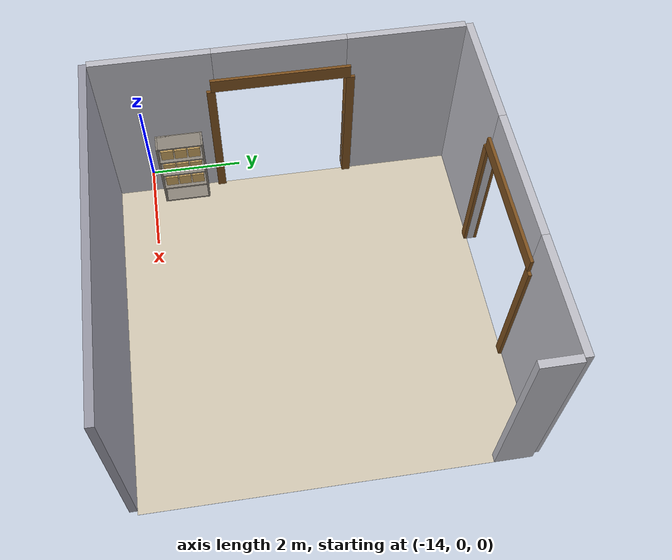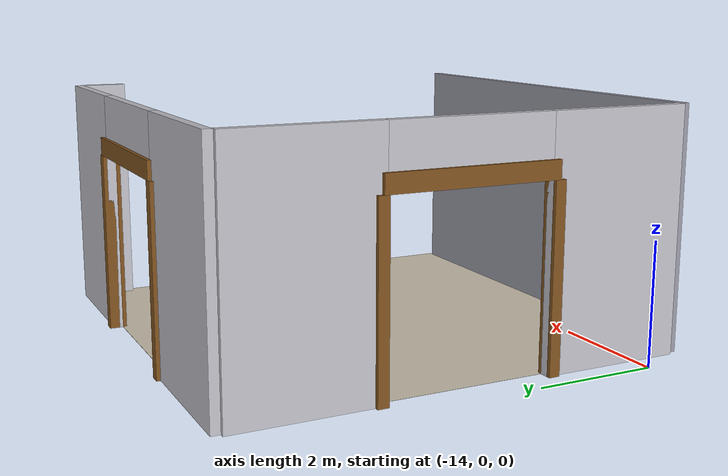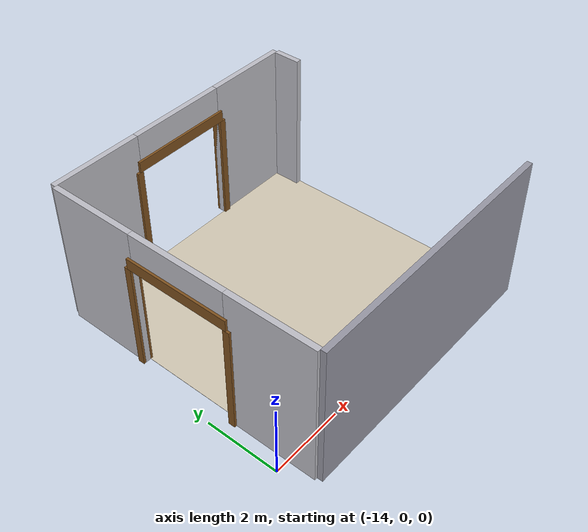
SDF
<?xml version="1.0"?>
<sdf version="1.8">
  <model name="room_b">
    <static>true</static>
    <pose>0 0 0 0 0 0</pose>
    <link name="floor_b">
      <pose>-9.75 3.0 0.002 0 0 0</pose>
      <visual name="vis">
        <geometry><box><size>7.5 7.5 0.004</size></box></geometry>
        <material><ambient>0.83 0.79 0.71 1</ambient><diffuse>0.83 0.79 0.71 1</diffuse></material>
      </visual>
    </link>
    <link name="wall_b_s">
      <pose>-9.825 -0.825 2.0 0 0 0</pose>
      <collision name="col"><geometry><box><size>7.499999999999999 0.15 4.0</size></box></geometry></collision>
      <visual name="vis">
        <geometry><box><size>7.499999999999999 0.15 4.0</size></box></geometry>
        <material><ambient>0.6 0.6 0.65 1</ambient><diffuse>0.6 0.6 0.65 1</diffuse></material>
      </visual>
    </link>
    <link name="wall_b_w_bot">
      <pose>-13.575 0.44999999999999996 2.0 0 0 0</pose>
      <collision name="col"><geometry><box><size>0.15 2.4 4.0</size></box></geometry></collision>
      <visual name="vis">
        <geometry><box><size>0.15 2.4 4.0</size></box></geometry>
        <material><ambient>0.75 0.75 0.78 1</ambient><diffuse>0.75 0.75 0.78 1</diffuse></material>
      </visual>
    </link>
    <link name="wall_b_w_top">
      <pose>-13.575 5.55 2.0 0 0 0</pose>
      <collision name="col"><geometry><box><size>0.15 2.4000000000000004 4.0</size></box></geometry></collision>
      <visual name="vis">
        <geometry><box><size>0.15 2.4000000000000004 4.0</size></box></geometry>
        <material><ambient>0.75 0.75 0.78 1</ambient><diffuse>0.75 0.75 0.78 1</diffuse></material>
      </visual>
    </link>
    <link name="wall_b_w_door_top">
      <pose>-13.575 3.0 3.5 0 0 0</pose>
      <collision name="col"><geometry><box><size>0.15 2.7 1.0</size></box></geometry></collision>
      <visual name="vis">
        <geometry><box><size>0.15 2.7 1.0</size></box></geometry>
        <material><ambient>0.75 0.75 0.78 1</ambient><diffuse>0.75 0.75 0.78 1</diffuse></material>
      </visual>
    </link>
    <link name="frm_bg_l">
      <pose>-13.575 1.5599999999999998 1.5 0 0 0</pose>
      <visual name="vis">
        <geometry><box><size>0.28 0.18 3.0</size></box></geometry>
        <material><ambient>0.5 0.32 0.12 1</ambient><diffuse>0.5 0.32 0.12 1</diffuse></material>
      </visual>
    </link>
    <link name="frm_bg_r">
      <pose>-13.575 4.44 1.5 0 0 0</pose>
      <visual name="vis">
        <geometry><box><size>0.28 0.18 3.0</size></box></geometry>
        <material><ambient>0.5 0.32 0.12 1</ambient><diffuse>0.5 0.32 0.12 1</diffuse></material>
      </visual>
    </link>
    <link name="frm_bg_t">
      <pose>-13.575 3.0 3.15 0 0 0</pose>
      <visual name="vis">
        <geometry><box><size>0.28 2.8800000000000003 0.3</size></box></geometry>
        <material><ambient>0.5 0.32 0.12 1</ambient><diffuse>0.5 0.32 0.12 1</diffuse></material>
      </visual>
    </link>
    <link name="wall_b_e_gap">
      <pose>-6.075 6.375 2.0 0 0 0</pose>
      <collision name="col"><geometry><box><size>0.15 0.75 4.0</size></box></geometry></collision>
      <visual name="vis">
        <geometry><box><size>0.15 0.75 4.0</size></box></geometry>
        <material><ambient>0.75 0.75 0.78 1</ambient><diffuse>0.75 0.75 0.78 1</diffuse></material>
      </visual>
    </link>
    <link name="wall_b_n_l">
      <pose>-12.3375 6.825 2.0 0 0 0</pose>
      <collision name="col"><geometry><box><size>2.4749999999999996 0.15 4.0</size></box></geometry></collision>
      <visual name="vis">
        <geometry><box><size>2.4749999999999996 0.15 4.0</size></box></geometry>
        <material><ambient>0.75 0.75 0.78 1</ambient><diffuse>0.75 0.75 0.78 1</diffuse></material>
      </visual>
    </link>
    <link name="wall_b_n_r">
      <pose>-7.237500000000001 6.825 2.0 0 0 0</pose>
      <collision name="col"><geometry><box><size>2.325 0.15 4.0</size></box></geometry></collision>
      <visual name="vis">
        <geometry><box><size>2.325 0.15 4.0</size></box></geometry>
        <material><ambient>0.75 0.75 0.78 1</ambient><diffuse>0.75 0.75 0.78 1</diffuse></material>
      </visual>
    </link>
    <link name="wall_b_n_top">
      <pose>-9.75 6.825 3.5 0 0 0</pose>
      <collision name="col"><geometry><box><size>2.7 0.15 1.0</size></box></geometry></collision>
      <visual name="vis">
        <geometry><box><size>2.7 0.15 1.0</size></box></geometry>
        <material><ambient>0.75 0.75 0.78 1</ambient><diffuse>0.75 0.75 0.78 1</diffuse></material>
      </visual>
    </link>
    <link name="frm_bd_l">
      <pose>-11.19 6.825 1.5 0 0 0</pose>
      <visual name="vis">
        <geometry><box><size>0.18 0.28 3.0</size></box></geometry>
        <material><ambient>0.5 0.32 0.12 1</ambient><diffuse>0.5 0.32 0.12 1</diffuse></material>
      </visual>
    </link>
    <link name="frm_bd_r">
      <pose>-8.31 6.825 1.5 0 0 0</pose>
      <visual name="vis">
        <geometry><box><size>0.18 0.28 3.0</size></box></geometry>
        <material><ambient>0.5 0.32 0.12 1</ambient><diffuse>0.5 0.32 0.12 1</diffuse></material>
      </visual>
    </link>
    <link name="frm_bd_t">
      <pose>-9.75 6.825 3.15 0 0 0</pose>
      <visual name="vis">
        <geometry><box><size>2.8800000000000003 0.28 0.3</size></box></geometry>
        <material><ambient>0.5 0.32 0.12 1</ambient><diffuse>0.5 0.32 0.12 1</diffuse></material>
      </visual>
    </link>
    <link name="shelf_b_back">
      <pose>-13.48 0.75 0.9 0 0 0</pose>
      <collision name="col"><geometry><box><size>0.04 1.0 1.8</size></box></geometry></collision>
      <visual name="vis">
        <geometry><box><size>0.04 1.0 1.8</size></box></geometry>
        <material><ambient>0.55 0.52 0.48 1</ambient><diffuse>0.55 0.52 0.48 1</diffuse></material>
      </visual>
    </link>
    <link name="shelf_b_sl">
      <pose>-13.3 0.27 0.9 0 0 0</pose>
      <collision name="col"><geometry><box><size>0.36000000000000004 0.04 1.8</size></box></geometry></collision>
      <visual name="vis">
        <geometry><box><size>0.36000000000000004 0.04 1.8</size></box></geometry>
        <material><ambient>0.55 0.52 0.48 1</ambient><diffuse>0.55 0.52 0.48 1</diffuse></material>
      </visual>
    </link>
    <link name="shelf_b_sr">
      <pose>-13.3 1.23 0.9 0 0 0</pose>
      <collision name="col"><geometry><box><size>0.36000000000000004 0.04 1.8</size></box></geometry></collision>
      <visual name="vis">
        <geometry><box><size>0.36000000000000004 0.04 1.8</size></box></geometry>
        <material><ambient>0.55 0.52 0.48 1</ambient><diffuse>0.55 0.52 0.48 1</diffuse></material>
      </visual>
    </link>
    <link name="shelf_b_brd0">
      <pose>-13.3 0.75 0.02 0 0 0</pose>
      <collision name="col"><geometry><box><size>0.36000000000000004 0.92 0.04</size></box></geometry></collision>
      <visual name="vis">
        <geometry><box><size>0.36000000000000004 0.92 0.04</size></box></geometry>
        <material><ambient>0.55 0.52 0.48 1</ambient><diffuse>0.55 0.52 0.48 1</diffuse></material>
      </visual>
    </link>
    <link name="shelf_b_brd1">
      <pose>-13.3 0.75 0.46 0 0 0</pose>
      <collision name="col"><geometry><box><size>0.36000000000000004 0.92 0.04</size></box></geometry></collision>
      <visual name="vis">
        <geometry><box><size>0.36000000000000004 0.92 0.04</size></box></geometry>
        <material><ambient>0.55 0.52 0.48 1</ambient><diffuse>0.55 0.52 0.48 1</diffuse></material>
      </visual>
    </link>
    <link name="shelf_b_brd2">
      <pose>-13.3 0.75 0.9 0 0 0</pose>
      <collision name="col"><geometry><box><size>0.36000000000000004 0.92 0.04</size></box></geometry></collision>
      <visual name="vis">
        <geometry><box><size>0.36000000000000004 0.92 0.04</size></box></geometry>
        <material><ambient>0.55 0.52 0.48 1</ambient><diffuse>0.55 0.52 0.48 1</diffuse></material>
      </visual>
    </link>
    <link name="shelf_b_brd3">
      <pose>-13.3 0.75 1.34 0 0 0</pose>
      <collision name="col"><geometry><box><size>0.36000000000000004 0.92 0.04</size></box></geometry></collision>
      <visual name="vis">
        <geometry><box><size>0.36000000000000004 0.92 0.04</size></box></geometry>
        <material><ambient>0.55 0.52 0.48 1</ambient><diffuse>0.55 0.52 0.48 1</diffuse></material>
      </visual>
    </link>
    <link name="shelf_b_brd4">
      <pose>-13.3 0.75 1.78 0 0 0</pose>
      <collision name="col"><geometry><box><size>0.36000000000000004 0.92 0.04</size></box></geometry></collision>
      <visual name="vis">
        <geometry><box><size>0.36000000000000004 0.92 0.04</size></box></geometry>
        <material><ambient>0.55 0.52 0.48 1</ambient><diffuse>0.55 0.52 0.48 1</diffuse></material>
      </visual>
    </link>
    <link name="shelf_b_bx10">
      <pose>-13.33 0.45999999999999996 0.61 0 0 0</pose>
      <collision name="col"><geometry><box><size>0.26 0.26 0.26</size></box></geometry></collision>
      <visual name="vis">
        <geometry><box><size>0.26 0.26 0.26</size></box></geometry>
        <material><ambient>0.8 0.65 0.38 1</ambient><diffuse>0.8 0.65 0.38 1</diffuse></material>
      </visual>
    </link>
    <link name="shelf_b_bx11">
      <pose>-13.33 0.75 0.61 0 0 0</pose>
      <collision name="col"><geometry><box><size>0.26 0.26 0.26</size></box></geometry></collision>
      <visual name="vis">
        <geometry><box><size>0.26 0.26 0.26</size></box></geometry>
        <material><ambient>0.8 0.65 0.38 1</ambient><diffuse>0.8 0.65 0.38 1</diffuse></material>
      </visual>
    </link>
    <link name="shelf_b_bx12">
      <pose>-13.33 1.04 0.61 0 0 0</pose>
      <collision name="col"><geometry><box><size>0.26 0.26 0.26</size></box></geometry></collision>
      <visual name="vis">
        <geometry><box><size>0.26 0.26 0.26</size></box></geometry>
        <material><ambient>0.8 0.65 0.38 1</ambient><diffuse>0.8 0.65 0.38 1</diffuse></material>
      </visual>
    </link>
    <link name="shelf_b_bx20">
      <pose>-13.33 0.45999999999999996 1.05 0 0 0</pose>
      <collision name="col"><geometry><box><size>0.26 0.26 0.26</size></box></geometry></collision>
      <visual name="vis">
        <geometry><box><size>0.26 0.26 0.26</size></box></geometry>
        <material><ambient>0.8 0.65 0.38 1</ambient><diffuse>0.8 0.65 0.38 1</diffuse></material>
      </visual>
    </link>
    <link name="shelf_b_bx21">
      <pose>-13.33 0.75 1.05 0 0 0</pose>
      <collision name="col"><geometry><box><size>0.26 0.26 0.26</size></box></geometry></collision>
      <visual name="vis">
        <geometry><box><size>0.26 0.26 0.26</size></box></geometry>
        <material><ambient>0.8 0.65 0.38 1</ambient><diffuse>0.8 0.65 0.38 1</diffuse></material>
      </visual>
    </link>
    <link name="shelf_b_bx22">
      <pose>-13.33 1.04 1.05 0 0 0</pose>
      <collision name="col"><geometry><box><size>0.26 0.26 0.26</size></box></geometry></collision>
      <visual name="vis">
        <geometry><box><size>0.26 0.26 0.26</size></box></geometry>
        <material><ambient>0.8 0.65 0.38 1</ambient><diffuse>0.8 0.65 0.38 1</diffuse></material>
      </visual>
    </link>
    <link name="shelf_b_bx30">
      <pose>-13.33 0.45999999999999996 1.4900000000000002 0 0 0</pose>
      <collision name="col"><geometry><box><size>0.26 0.26 0.26</size></box></geometry></collision>
      <visual name="vis">
        <geometry><box><size>0.26 0.26 0.26</size></box></geometry>
        <material><ambient>0.8 0.65 0.38 1</ambient><diffuse>0.8 0.65 0.38 1</diffuse></material>
      </visual>
    </link>
    <link name="shelf_b_bx31">
      <pose>-13.33 0.75 1.4900000000000002 0 0 0</pose>
      <collision name="col"><geometry><box><size>0.26 0.26 0.26</size></box></geometry></collision>
      <visual name="vis">
        <geometry><box><size>0.26 0.26 0.26</size></box></geometry>
        <material><ambient>0.8 0.65 0.38 1</ambient><diffuse>0.8 0.65 0.38 1</diffuse></material>
      </visual>
    </link>
    <link name="shelf_b_bx32">
      <pose>-13.33 1.04 1.4900000000000002 0 0 0</pose>
      <collision name="col"><geometry><box><size>0.26 0.26 0.26</size></box></geometry></collision>
      <visual name="vis">
        <geometry><box><size>0.26 0.26 0.26</size></box></geometry>
        <material><ambient>0.8 0.65 0.38 1</ambient><diffuse>0.8 0.65 0.38 1</diffuse></material>
      </visual>
    </link>
  </model>
</sdf>
